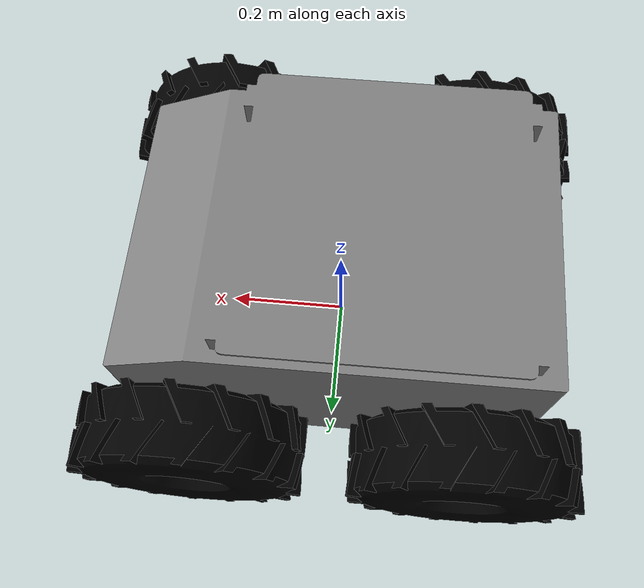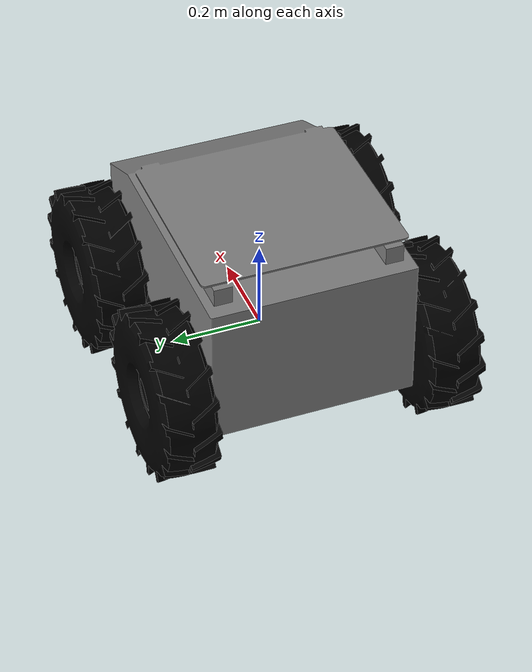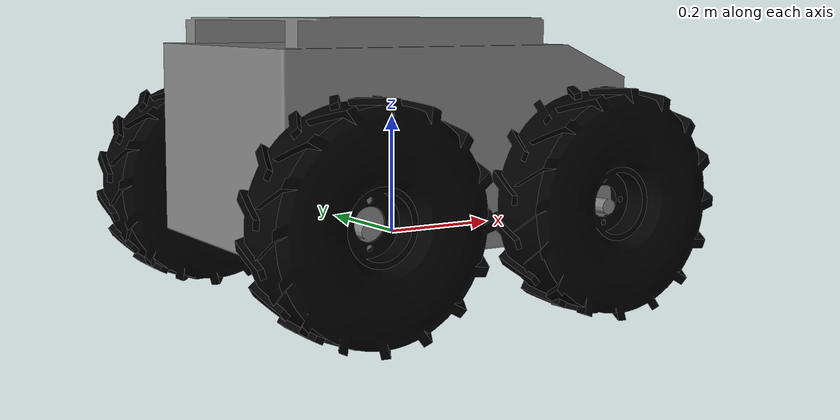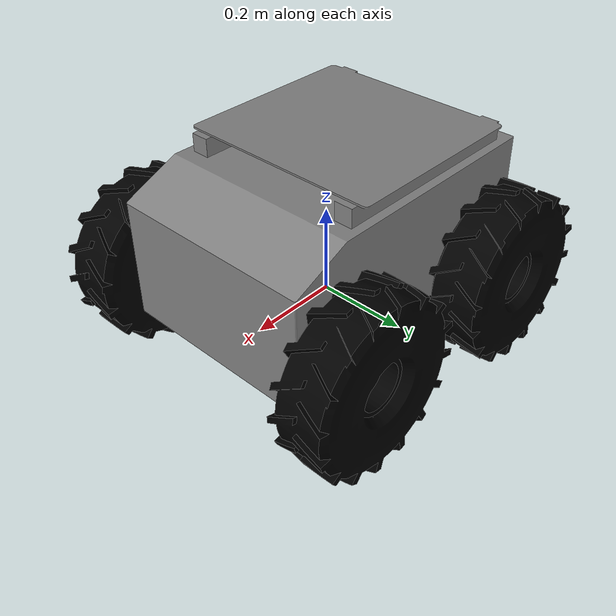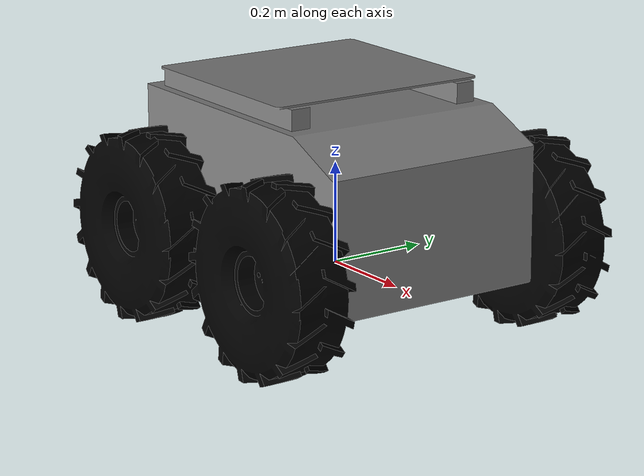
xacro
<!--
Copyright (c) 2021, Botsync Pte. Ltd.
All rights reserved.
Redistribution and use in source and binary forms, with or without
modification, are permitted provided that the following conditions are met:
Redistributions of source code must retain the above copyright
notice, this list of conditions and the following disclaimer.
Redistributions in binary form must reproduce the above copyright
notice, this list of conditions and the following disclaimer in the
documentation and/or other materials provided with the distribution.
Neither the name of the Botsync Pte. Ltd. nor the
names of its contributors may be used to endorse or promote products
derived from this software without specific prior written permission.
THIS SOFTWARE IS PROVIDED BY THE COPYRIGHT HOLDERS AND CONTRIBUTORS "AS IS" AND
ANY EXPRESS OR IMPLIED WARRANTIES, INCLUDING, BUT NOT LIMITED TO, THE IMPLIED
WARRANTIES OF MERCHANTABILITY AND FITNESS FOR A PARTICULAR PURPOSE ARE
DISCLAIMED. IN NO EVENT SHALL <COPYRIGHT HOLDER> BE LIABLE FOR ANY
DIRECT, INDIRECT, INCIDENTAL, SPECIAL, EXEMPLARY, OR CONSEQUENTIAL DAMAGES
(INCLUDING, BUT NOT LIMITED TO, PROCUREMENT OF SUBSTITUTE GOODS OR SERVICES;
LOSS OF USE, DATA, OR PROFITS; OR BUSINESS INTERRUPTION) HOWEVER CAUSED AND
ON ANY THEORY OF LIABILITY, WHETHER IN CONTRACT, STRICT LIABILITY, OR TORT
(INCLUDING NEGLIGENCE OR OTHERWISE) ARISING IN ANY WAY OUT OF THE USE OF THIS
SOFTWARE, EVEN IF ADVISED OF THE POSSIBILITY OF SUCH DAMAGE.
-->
<robot name="copernicus" xmlns:xacro="http://ros.org/wiki/xacro">
  <xacro:arg name="sim_type" default="gazebo" />
  <xacro:include filename="$(find copernicus_sim_clean)/urdf/copernicus.urdf.xacro" />

  <xacro:copernicus_robot />

</robot>

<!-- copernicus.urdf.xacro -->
<robot name="copernicus_robot" xmlns:xacro="https://ros.org/wiki/xacro">
    <!-- xacro includes -->
    <xacro:include filename="$(find copernicus_sim_clean)/urdf/vehicle_properties.xacro"/>
    <xacro:include filename="$(find copernicus_sim_clean)/urdf/components/wheel.urdf.xacro"/>

    <!-- xacro properties -->
    <xacro:property name="PI" value="3.14159"/>
    <xacro:property name="M_PI" value="3.14159"/>

    <!-- xacro args -->
    <xacro:arg name="robot_namespace" default="/" />
    <xacro:arg name="lidar_enabled" default="false"/>
    <xacro:arg name="test_lidar_enabled" default="false"/>
    <xacro:arg name="sick_lms151_enabled" default="false"/>
    <xacro:arg name="velodyne_enabled" default="false"/>
    <xacro:arg name="imu_enabled" default="false"/>

    <xacro:include filename="$(find copernicus_sim_clean)/urdf/gazebo_control.xacro"/>
    <xacro:include filename="$(find copernicus_sim_clean)/urdf/components/sensors.urdf.xacro"/>

    <xacro:macro name="copernicus_robot">
        <!-- Footprint -->
        <link name="base_footprint"/>
        <link name="base_link"/>

        <joint name="base_link_joint" type="fixed">
            <origin xyz="0 0 0" rpy="0 0 0" />
            <parent link="base_link" />
            <child link="chassis_link" />
        </joint>
        <!-- Joint from footprint to base link(chassis) -->
        <joint name="base_footprint_joint" type="fixed">
            <origin xyz="0 0 ${-ground_clearance}" rpy="0 0 0" />
            <parent link="base_link" />
            <child link="base_footprint" />
        </joint>

        <!-- Chassis a.k.a chassis_link -->
        <link name="chassis_link">
            <visual>
                <origin xyz="0 0 0" rpy="0 0 0" />
                <geometry>
                    <mesh filename="file://$(find copernicus_sim_clean)/meshes/copernicus.dae" scale="0.1 0.1 0.1"/>
                </geometry>
                <material name="gray"/>
            </visual>
            <collision>
                <origin xyz="0 0 0" rpy="0 0 0" />
                <geometry>
                    <mesh filename="file://$(find copernicus_sim_clean)/meshes/copernicus.dae" scale="0.1 0.1 0.1"/>
                </geometry>
            </collision>
            <inertial>
                <mass value="${base_mass}"/>
                <inertia ixx="${base_ixx}" ixy="${base_ixy}" ixz="${base_ixz}" iyy="${base_iyy}" iyz="${base_iyz}" izz="${base_izz}"/>
            </inertial>
        </link>

        <!-- Wheel -->
        <xacro:copernicus_wheel wheel_prefix="front_right">
            <origin xyz="${wheel_joint_x_abs} ${-wheel_joint_y_abs} ${wheel_joint_z_abs}" rpy="0 0 0"/>
        </xacro:copernicus_wheel>

        <xacro:copernicus_wheel wheel_prefix="back_right">
            <origin xyz="${-wheel_joint_x_abs} ${-wheel_joint_y_abs} ${wheel_joint_z_abs}" rpy="0 0 0"/>
        </xacro:copernicus_wheel>

        <xacro:copernicus_wheel wheel_prefix="front_left">
            <origin xyz="${wheel_joint_x_abs} ${wheel_joint_y_abs} ${wheel_joint_z_abs}" rpy="0 0 0"/>
        </xacro:copernicus_wheel>

        <xacro:copernicus_wheel wheel_prefix="back_left">
            <origin xyz="${-wheel_joint_x_abs} ${wheel_joint_y_abs} ${wheel_joint_z_abs}" rpy="0 0 0"/>
        </xacro:copernicus_wheel>

    </xacro:macro>

</robot>

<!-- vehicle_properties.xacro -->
<robot name="copernicus_robot" xmlns:xacro="https://ros.org/wiki/xacro">
    <material name="blue">
        <color rgba="0 0 0.8 1"/>
    </material>
    <material name="black">
        <color rgba="0 0 0 1"/>
    </material>

    <material name="white">
       <color rgba="1 1 1 1"/>
    </material>

    <material name="gray">
        <color rgba="0.5 0.5 0.5 1"/>
    </material>

    <xacro:property name="base_mass" value="5.674"/>

    <xacro:property name="base_l" value="0.646"/>
    <xacro:property name="base_w" value="0.456"/>
    <xacro:property name="base_h" value="0.323"/>
    <xacro:property name="base_ixx" value="0.105"/>
    <xacro:property name="base_ixy" value="0.00"/>
    <xacro:property name="base_ixz" value="0.00"/>
    <xacro:property name="base_iyy" value="0.177"/>
    <xacro:property name="base_iyz" value="0.00"/>
    <xacro:property name="base_izz" value="0.228"/>

    <xacro:property name="ground_clearance" value="0.11457"/>

    <xacro:property name="wheel_width" value="0.120" />
    <xacro:property name="wheel_radius" value="0.18" />
    <xacro:property name="wheel_joint_x_abs" value="0.22030" />
    <xacro:property name="wheel_joint_y_abs" value="0.29490" />
    <xacro:property name="wheel_joint_z_abs" value="0.07300" />
    <xacro:property name="wheel_ixx" value="0.0245"/>
    <!-- Wheel inertia is wrong have to recalculate -->
    <xacro:property name="wheel_ixy" value="0.0"/>
    <xacro:property name="wheel_ixz" value="0.0"/>
    <xacro:property name="wheel_iyy" value="0.0245"/>
    <xacro:property name="wheel_iyz" value="0.0"/>
    <xacro:property name="wheel_izz" value="0.0427"/>

    <xacro:property name="lms151_mount_l" value="0.156"/>
    <xacro:property name="lms151_mount_h" value="0.094"/>
    <xacro:property name="lms151_mount_w" value="0.1102"/>
    <xacro:property name="lms151_mount_mass" value="0.229"/>
    <xacro:property name="lms151_mount_ixx" value="0.002"/>
    <xacro:property name="lms151_mount_ixy" value="0.000"/>
    <xacro:property name="lms151_mount_ixz" value="0.000"/>
    <xacro:property name="lms151_mount_iyy" value="0.005"/>
    <xacro:property name="lms151_mount_iyz" value="0.000"/>
    <xacro:property name="lms151_mount_izz" value="0.002"/>

    <xacro:property name="lms151_mount_joint_x" value="0.0"/>
    <xacro:property name="lms151_mount_joint_y" value="0.0"/>
    <xacro:property name="lms151_mount_joint_z" value="0.4155"/>

    <xacro:property name="lms151_joint_x" value="0.0"/>
    <xacro:property name="lms151_joint_y" value="0.0"/>
    <xacro:property name="lms151_joint_z" value="0.0"/>

    <!-- base of lidar mopunt, x position in lidar_copernicus.urdf.xacro -->
    <xacro:property name="lidar_joint_y" value="0.0"/>
    <xacro:property name="lidar_joint_z" value="0.395"/>

    <xacro:property name="velodyne_mount_l" value="0.112"/>
    <xacro:property name="velodyne_mount_h" value="0.039"/>
    <xacro:property name="velodyne_mount_w" value="0.125"/>
    <xacro:property name="velodyne_mount_mass" value="0.300"/>
    <xacro:property name="velodyne_mount_ixx" value="0.002"/>
    <xacro:property name="velodyne_mount_ixy" value="0.000"/>
    <xacro:property name="velodyne_mount_ixz" value="0.000"/>
    <xacro:property name="velodyne_mount_iyy" value="0.005"/>
    <xacro:property name="velodyne_mount_iyz" value="0.000"/>
    <xacro:property name="velodyne_mount_izz" value="0.002"/>

    <xacro:property name="velodyne_mount_joint_x" value="0.259"/>
    <xacro:property name="velodyne_mount_joint_y" value="-0.0625"/>
    <xacro:property name="velodyne_mount_joint_z" value="0.296"/>
    <xacro:property name="velodyne_mount_joint_pitch" value="0.415"/>

    <xacro:property name="velodyne_joint_x" value="0.027"/>
    <xacro:property name="velodyne_joint_y" value="0.0625"/>
    <xacro:property name="velodyne_joint_z" value="0.0295"/>
    <xacro:property name="velodyne_joint_pitch" value="0.262"/>
    <xacro:property name="dummy_inertia" value="1e-09"/>

    <xacro:property name="dummy_inertia" value="1e-09"/>

</robot>

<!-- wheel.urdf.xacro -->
<robot name="copernicus_wheel" xmlns:xacro="https://ros.org/wiki/xacro">

    <!-- Wheel Macro -->
    <xacro:macro name="copernicus_wheel" params="wheel_prefix *joint_origin">

        <!-- Wheel Link -->
        <link name="${wheel_prefix}_wheel">
            <visual>
                <origin xyz="0 0 0" rpy="0 0 0"/>
                <geometry>
                    <mesh filename="file://$(find copernicus_sim)/meshes/wheel.stl" scale="0.1 0.1 0.1"/>
                </geometry>
                <material name="black"/>
            </visual>
            <collision>
                <origin xyz="0 0 0" rpy="${PI/2} 0 0"/>
                <geometry>
                    <cylinder length="${wheel_width}" radius="${wheel_radius}" />
                </geometry>
            </collision>
            <inertial>
                <mass value="2.637" />
                <origin xyz="0 0 0" />
                <inertia  ixx="${wheel_ixx}" ixy="${wheel_ixy}" ixz="${wheel_ixz}" iyy="${wheel_iyy}" iyz="${wheel_iyz}" izz="${wheel_izz}" />
            </inertial>
        </link>

        <gazebo reference="${wheel_prefix}_wheel">
            <material>Gazebo/Black</material>
            <mu1 value="1.0"/>
            <mu2 value="1.0"/>
            <kp value="10000000.0" />
            <kd value="1.0" />
            <fdir1 value="0 0 0"/>
        </gazebo>

        <!-- Wheel Joint -->
        <joint name="${wheel_prefix}_wheel_joint" type="continuous">
            <parent link="chassis_link"/>
            <child link="${wheel_prefix}_wheel" />
            <xacro:insert_block name="joint_origin" />
            <axis xyz="0 1 0" />
        </joint>

        <!-- Wheel Transmission -->
        <transmission name="${wheel_prefix}_wheel_transmission" type="SimpleTransmission">
            <type>transmission_interface/SimpleTransmission</type>
            <joint name="${wheel_prefix}_wheel_joint">
                <hardwareInterface>hardware_interface/VelocityJointInterface</hardwareInterface>
            </joint>
            <actuator name="${wheel_prefix}_motor">
                <mechanicalReduction>1</mechanicalReduction>
            </actuator>
        </transmission>
    </xacro:macro>
</robot>
